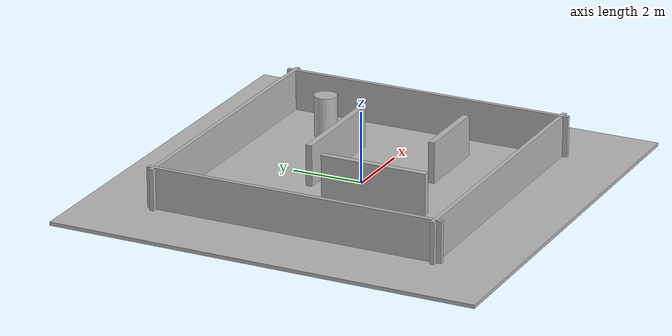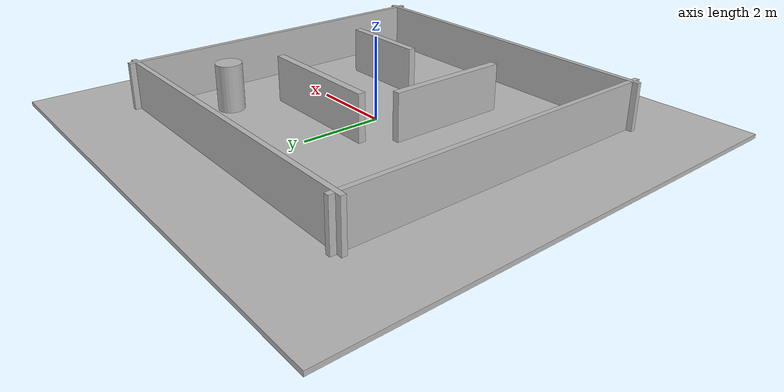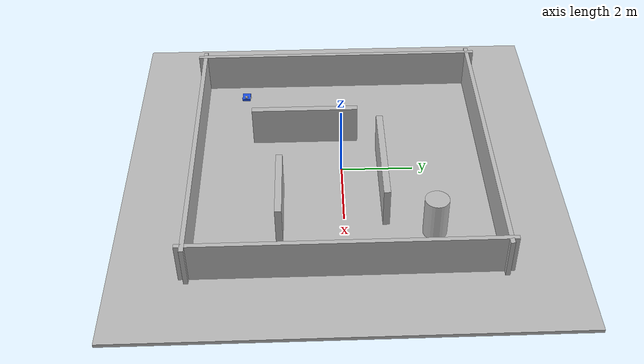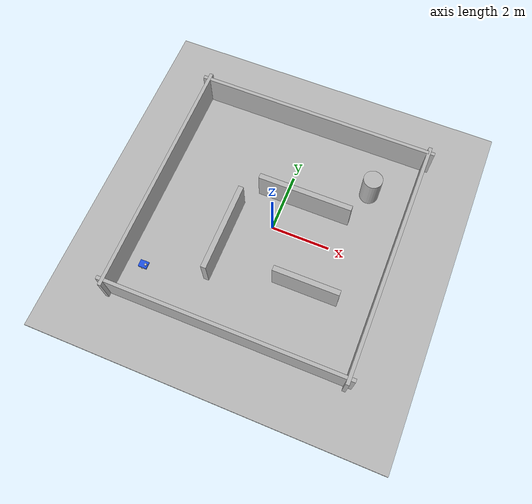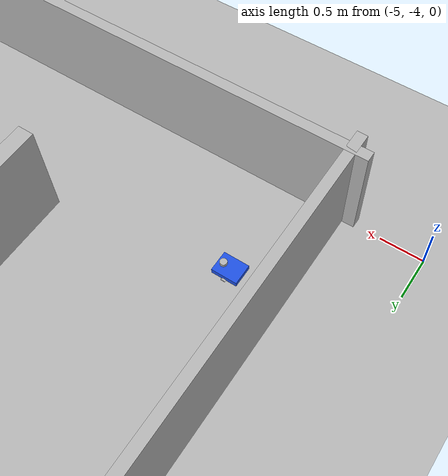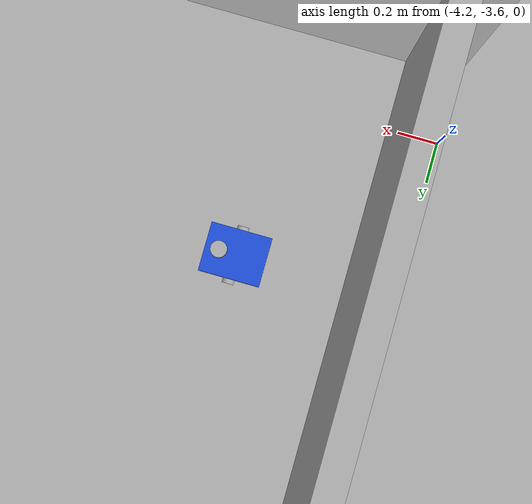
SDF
<?xml version="1.0"?>
<sdf version="1.10">
  <world name="slam_lab">
    <physics name="benchmark_physics" type="ignored"><max_step_size>0.001</max_step_size><real_time_factor>1.0</real_time_factor></physics>
    <plugin filename="gz-sim-physics-system" name="gz::sim::systems::Physics"/>
    <plugin filename="gz-sim-user-commands-system" name="gz::sim::systems::UserCommands"/>
    <plugin filename="gz-sim-scene-broadcaster-system" name="gz::sim::systems::SceneBroadcaster"/>
    <plugin filename="gz-sim-sensors-system" name="gz::sim::systems::Sensors"><render_engine>ogre2</render_engine></plugin>
    <light type="directional" name="sun"><pose>0 0 10 0 0 0</pose><diffuse>0.9 0.9 0.9 1</diffuse><specular>0.2 0.2 0.2 1</specular><direction>-0.4 0.2 -0.9</direction></light>
    <model name="ground"><static>true</static><link name="link"><collision name="c"><geometry><box><size>12 12 0.1</size></box></geometry></collision><visual name="v"><geometry><box><size>12 12 0.1</size></box></geometry></visual></link></model>
    <model name="walls"><static>true</static><link name="walls">
      <collision name="north"><pose>0 4 0.6 0 0 0</pose><geometry><box><size>8.4 0.12 1.2</size></box></geometry></collision>
      <collision name="south"><pose>0 -4 0.6 0 0 0</pose><geometry><box><size>8.4 0.12 1.2</size></box></geometry></collision>
      <collision name="east"><pose>4 0 0.6 0 0 0</pose><geometry><box><size>0.12 8.4 1.2</size></box></geometry></collision>
      <collision name="west"><pose>-4 0 0.6 0 0 0</pose><geometry><box><size>0.12 8.4 1.2</size></box></geometry></collision>
      <collision name="inner_a"><pose>0.7 1.1 0.6 0 0 0</pose><geometry><box><size>3.2 0.18 1.2</size></box></geometry></collision>
      <collision name="inner_b"><pose>-1.3 -1.0 0.6 0 0 0</pose><geometry><box><size>0.18 3.0 1.2</size></box></geometry></collision>
      <collision name="inner_c"><pose>1.8 -1.7 0.6 0 0 0</pose><geometry><box><size>2.2 0.18 1.2</size></box></geometry></collision>
      <collision name="pillar"><pose>2.6 2.35 0.6 0 0 0</pose><geometry><cylinder><radius>0.32</radius><length>1.2</length></cylinder></geometry></collision>
      <visual name="north_v"><pose>0 4 0.6 0 0 0</pose><geometry><box><size>8.4 0.12 1.2</size></box></geometry></visual><visual name="south_v"><pose>0 -4 0.6 0 0 0</pose><geometry><box><size>8.4 0.12 1.2</size></box></geometry></visual><visual name="east_v"><pose>4 0 0.6 0 0 0</pose><geometry><box><size>0.12 8.4 1.2</size></box></geometry></visual><visual name="west_v"><pose>-4 0 0.6 0 0 0</pose><geometry><box><size>0.12 8.4 1.2</size></box></geometry></visual><visual name="inner_a_v"><pose>0.7 1.1 0.6 0 0 0</pose><geometry><box><size>3.2 0.18 1.2</size></box></geometry></visual><visual name="inner_b_v"><pose>-1.3 -1.0 0.6 0 0 0</pose><geometry><box><size>0.18 3.0 1.2</size></box></geometry></visual><visual name="inner_c_v"><pose>1.8 -1.7 0.6 0 0 0</pose><geometry><box><size>2.2 0.18 1.2</size></box></geometry></visual><visual name="pillar_v"><pose>2.6 2.35 0.6 0 0 0</pose><geometry><cylinder><radius>0.32</radius><length>1.2</length></cylinder></geometry></visual>
    </link></model>
    <include><uri>model://slam_robot</uri><pose>-3.4 -2.8 0 0 0 0</pose></include>
  </world>
</sdf>

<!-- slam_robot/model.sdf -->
<sdf version="1.10">
  <model name="slam_robot">
    <pose>0 0 0 0 0 0</pose><self_collide>false</self_collide>
    <link name="base_footprint"><inertial><pose>0 0 0.073 0 0 0</pose><mass>2.2</mass><inertia><ixx>0.014</ixx><iyy>0.021</iyy><izz>0.031</izz></inertia></inertial><collision name="base_collision"><pose>0 0 0.073 0 0 0</pose><geometry><box><size>0.30 0.24 0.08</size></box></geometry><surface><friction><ode><mu>0.8</mu><mu2>0.8</mu2></ode></friction></surface></collision><visual name="base_visual"><pose>0 0 0.073 0 0 0</pose><geometry><box><size>0.30 0.24 0.08</size></box></geometry><material><ambient>0.10 0.25 0.75 1</ambient><diffuse>0.12 0.32 0.9 1</diffuse></material></visual></link>
    <link name="left_wheel"><pose>0 0.13 0.033 1.57079632679 0 0</pose><inertial><mass>0.12</mass><inertia><ixx>0.00005</ixx><iyy>0.00005</iyy><izz>0.00008</izz></inertia></inertial><collision name="collision"><geometry><cylinder><radius>0.033</radius><length>0.025</length></cylinder></geometry><surface><friction><ode><mu>1.0</mu><mu2>0.02</mu2><fdir1>1 0 0</fdir1></ode></friction></surface></collision><visual name="visual"><geometry><cylinder><radius>0.033</radius><length>0.025</length></cylinder></geometry></visual></link>
    <joint name="left_wheel_joint" type="revolute"><parent>base_footprint</parent><child>left_wheel</child><axis><xyz expressed_in="__model__">0 1 0</xyz><limit><lower>-1e16</lower><upper>1e16</upper></limit></axis></joint>
    <link name="right_wheel"><pose>0 -0.13 0.033 1.57079632679 0 0</pose><inertial><mass>0.12</mass><inertia><ixx>0.00005</ixx><iyy>0.00005</iyy><izz>0.00008</izz></inertia></inertial><collision name="collision"><geometry><cylinder><radius>0.033</radius><length>0.025</length></cylinder></geometry><surface><friction><ode><mu>1.0</mu><mu2>0.02</mu2><fdir1>1 0 0</fdir1></ode></friction></surface></collision><visual name="visual"><geometry><cylinder><radius>0.033</radius><length>0.025</length></cylinder></geometry></visual></link>
    <joint name="right_wheel_joint" type="revolute"><parent>base_footprint</parent><child>right_wheel</child><axis><xyz expressed_in="__model__">0 1 0</xyz><limit><lower>-1e16</lower><upper>1e16</upper></limit></axis></joint>
    <link name="caster"><pose>-0.105 0 0.015 0 0 0</pose><inertial><mass>0.04</mass><inertia><ixx>0.00001</ixx><iyy>0.00001</iyy><izz>0.00001</izz></inertia></inertial><collision name="collision"><geometry><sphere><radius>0.015</radius></sphere></geometry><surface><friction><ode><mu>0.05</mu><mu2>0.05</mu2></ode></friction></surface></collision><visual name="visual"><geometry><sphere><radius>0.015</radius></sphere></geometry></visual></link>
    <joint name="caster_joint" type="ball"><parent>base_footprint</parent><child>caster</child></joint>
    <link name="laser_link"><pose>0.08 0 0.14 0 0 0</pose><inertial><mass>0.08</mass><inertia><ixx>0.0001</ixx><iyy>0.0001</iyy><izz>0.0001</izz></inertia></inertial><visual name="visual"><geometry><cylinder><radius>0.04</radius><length>0.04</length></cylinder></geometry></visual><sensor name="lidar" type="gpu_lidar"><always_on>true</always_on><visualize>false</visualize><update_rate>10</update_rate><topic>/scan</topic><gz_frame_id>laser_link</gz_frame_id><lidar><scan><horizontal><samples>720</samples><resolution>1</resolution><min_angle>-3.14159265359</min_angle><max_angle>3.14159265359</max_angle></horizontal></scan><range><min>0.10</min><max>12.0</max><resolution>0.01</resolution></range><noise><type>gaussian</type><mean>0.0</mean><stddev>0.005</stddev></noise></lidar></sensor></link>
    <joint name="laser_joint" type="fixed"><parent>base_footprint</parent><child>laser_link</child></joint>
    <plugin filename="gz-sim-diff-drive-system" name="gz::sim::systems::DiffDrive"><left_joint>left_wheel_joint</left_joint><right_joint>right_wheel_joint</right_joint><wheel_separation>0.26</wheel_separation><wheel_radius>0.033</wheel_radius><topic>/model/slam_robot/cmd_vel</topic><odom_topic>/model/slam_robot/odometry</odom_topic><tf_topic>/model/slam_robot/tf</tf_topic><frame_id>odom</frame_id><child_frame_id>base_footprint</child_frame_id><odom_publish_frequency>50</odom_publish_frequency><max_linear_velocity>0.60</max_linear_velocity><min_linear_velocity>-0.30</min_linear_velocity><max_angular_velocity>2.0</max_angular_velocity><min_angular_velocity>-2.0</min_angular_velocity><max_linear_acceleration>1.2</max_linear_acceleration><max_angular_acceleration>3.0</max_angular_acceleration></plugin>
    <plugin filename="gz-sim-odometry-publisher-system" name="gz::sim::systems::OdometryPublisher"><odom_frame>world</odom_frame><robot_base_frame>ground_truth_base</robot_base_frame><odom_publish_frequency>10</odom_publish_frequency><odom_topic>/model/slam_robot/ground_truth</odom_topic><tf_topic>/model/slam_robot/ground_truth_tf</tf_topic><dimensions>2</dimensions><gaussian_noise>0.0</gaussian_noise></plugin>
  </model>
</sdf>
